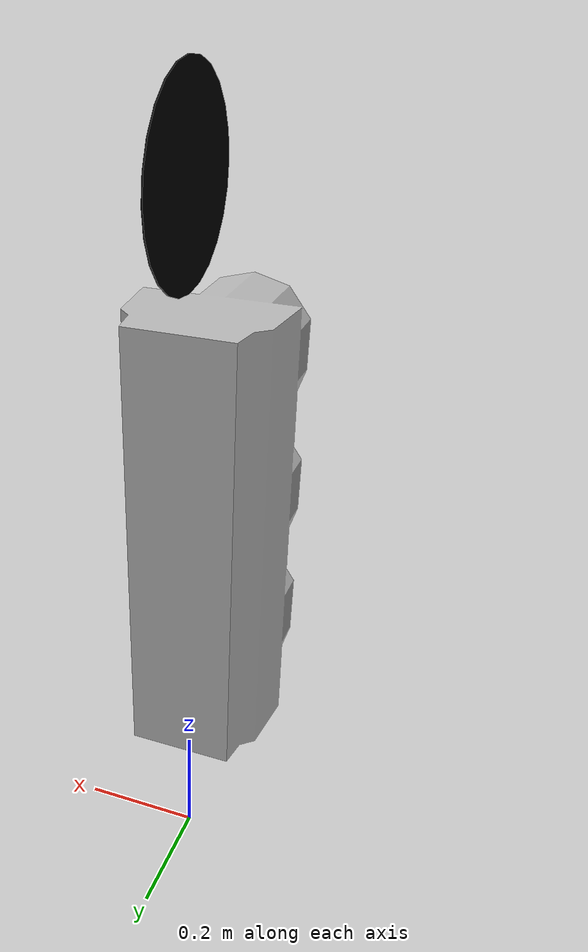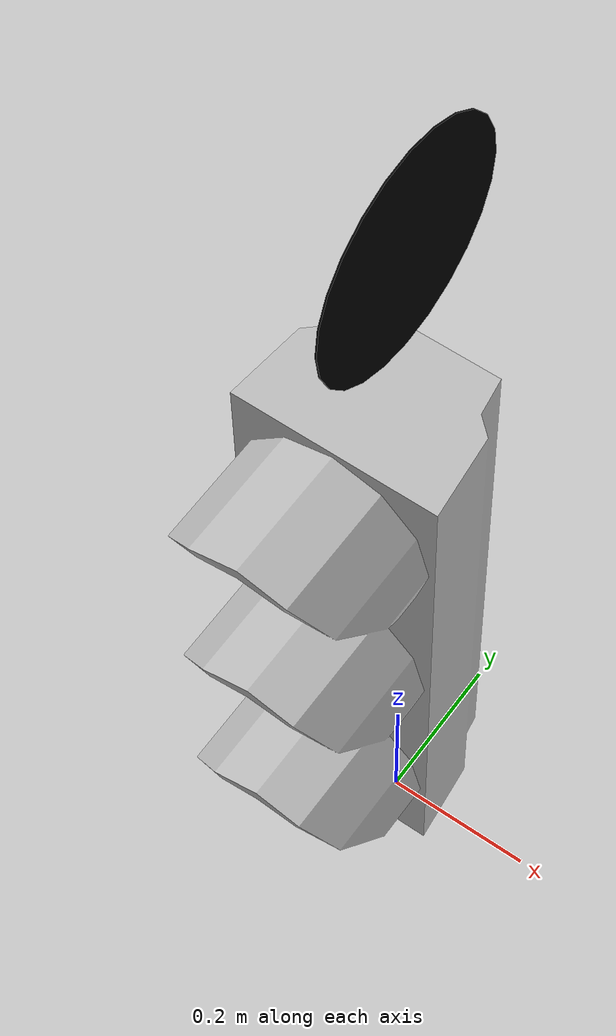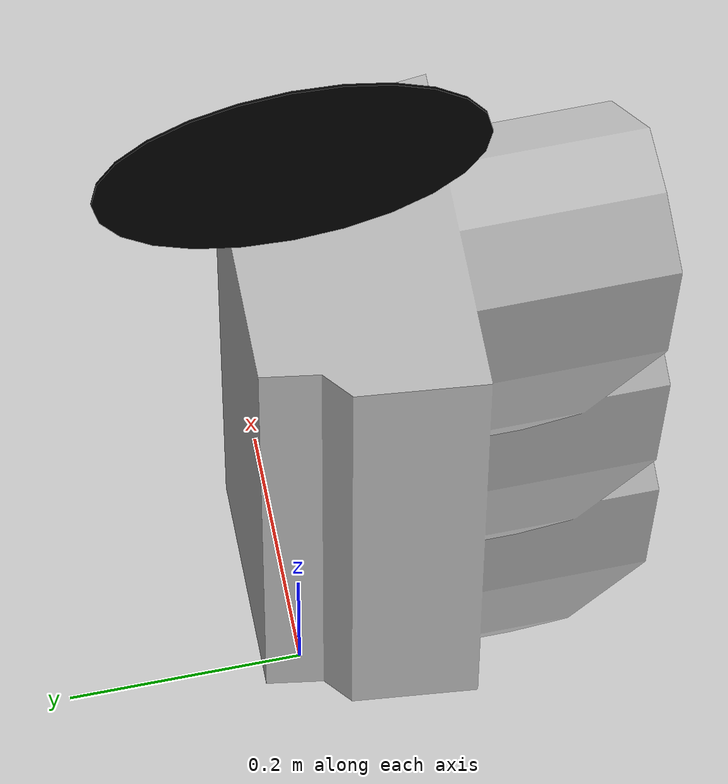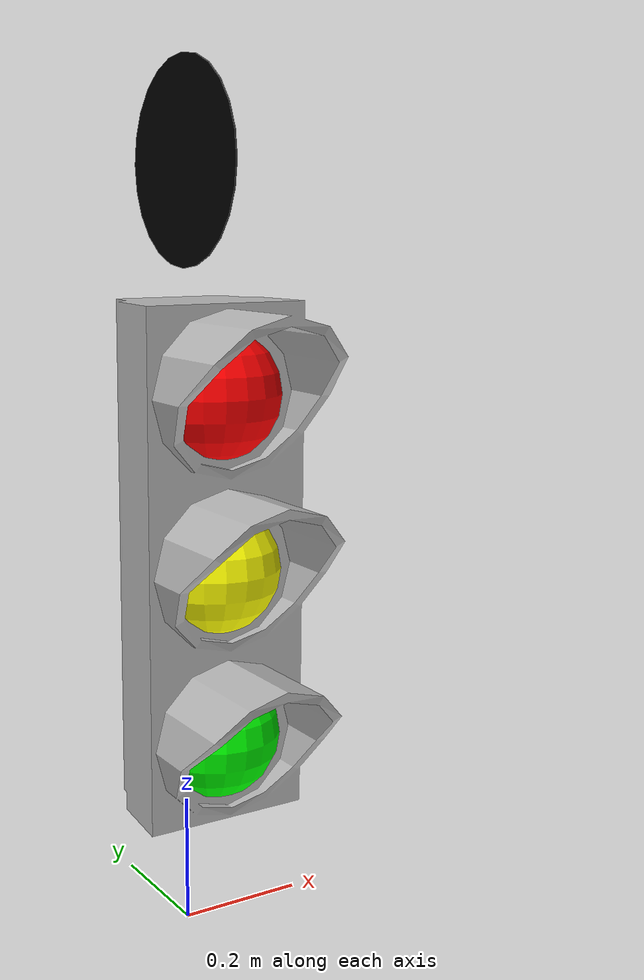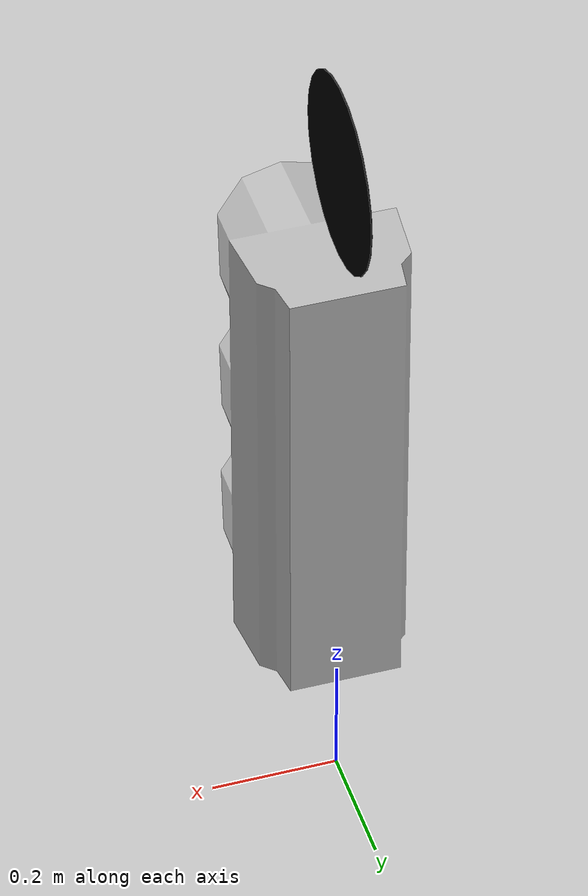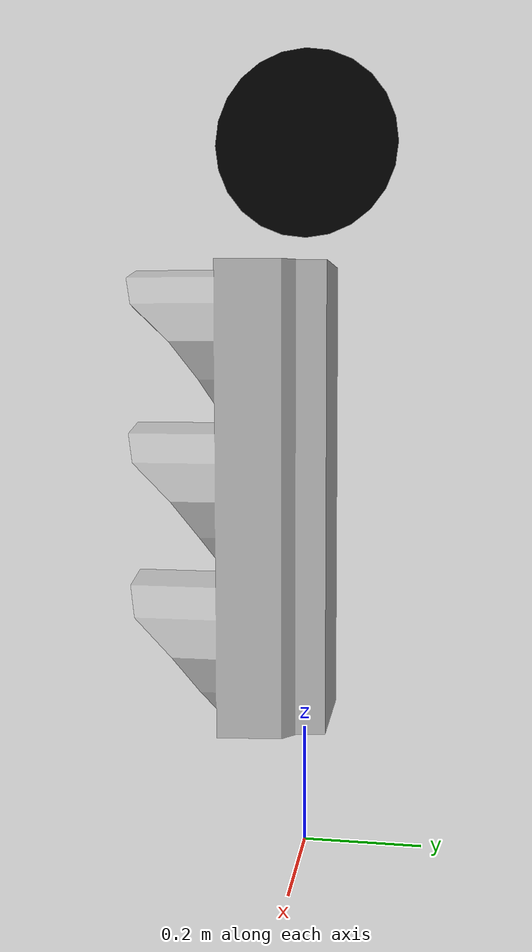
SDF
<?xml version="1.0" ?>
<sdf version="1.6">
  <model name="stop_light">

    <static>true</static>
    <!-- test -->

<!-- test -->
    <!-- this pose can be overriden when including the light on another model -->
    <pose>0 0 1.0 0 0 0</pose>

    <link name="link">

      <collision name="collision">
        <geometry>
          <mesh>
            <uri>model://stop_light/meshes/stop_light.obj</uri>
            <scale>0.01 0.01 0.01</scale>
          </mesh>
        </geometry>
      </collision>

      <visual name="frame">
        <geometry>
          <mesh>
            <uri>model://stop_light/meshes/stop_light.obj</uri>
            <scale>0.01 0.01 0.01</scale>
          </mesh>
        </geometry>
      </visual>

      <visual name="red">
        <pose>-0.001123 -0.082251 -0.147514 0 0 0</pose>
        <geometry>
          <sphere>
            <radius>0.1012</radius>
          </sphere>
        </geometry>
        <material>
          <script>
            <uri>model://stop_light/materials/scripts/</uri>
            <uri>model://stop_light/materials/textures/</uri>
            <name>StopLight/Light</name>
          </script>
          <ambient>1 0 0 1</ambient>
          <specular>1 0 0 1</specular>
          <!-- Turn a light on by uncommenting emissive -->
        </material>

      </visual>

      <visual name="yellow">
        <pose>-0.001123 -0.082251 -0.402 0 0 0</pose>
        <geometry>
          <sphere>
            <radius>0.1012</radius>
          </sphere>
        </geometry>
        <material>
          <script>
            <uri>model://stop_light/materials/scripts/</uri>
            <uri>model://stop_light/materials/textures/</uri>
            <name>StopLight/Light</name>
          </script>
          <ambient>1 1 0 1</ambient>
          <specular>1 1 0 1</specular>
        </material>

      </visual>

      <visual name="green">
        <pose>-0.001123 -0.082251 -0.655 0 0 0</pose>

        <geometry>
          <sphere>
            <radius>0.1012</radius>
          </sphere>
        </geometry>
        <material>
          <script>
            <uri>model://stop_light/materials/scripts/</uri>
            <uri>model://stop_light/materials/textures/</uri>
            <name>StopLight/Light</name>
          </script>
          <ambient>0 1 0 1</ambient>
          <specular>0 1 0 1</specular>
        </material>

      </visual>

    </link>

    <link name="green_on">
      <gravity>false</gravity>
      <pose>0 0 0.175 0 1.5707 0</pose>
      <collision name="collision">
        <geometry>
          <cylinder>
            <radius>0.15</radius>
            <length>0.002</length>
          </cylinder>
        </geometry>
      </collision>

      <visual name="visual">
        <geometry>
          <cylinder>
            <radius>0.15</radius>
            <length>0.002</length>
          </cylinder>
        </geometry>
        <material>
          <ambient>0 0 0 1</ambient>
          <diffuse>0 0 0 1</diffuse>
          <specular>0 0 0 1</specular>
          <emissive>0 1 0 1</emissive>
        </material>
      </visual>
    </link>
  </model>
</sdf>
